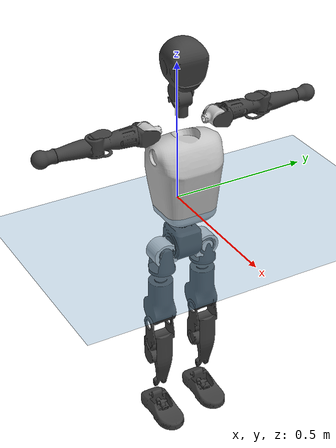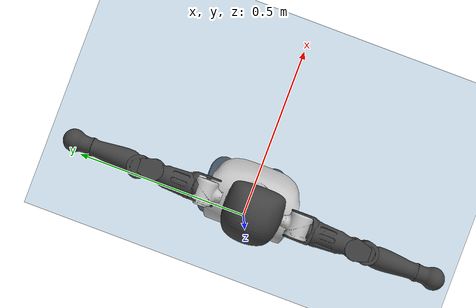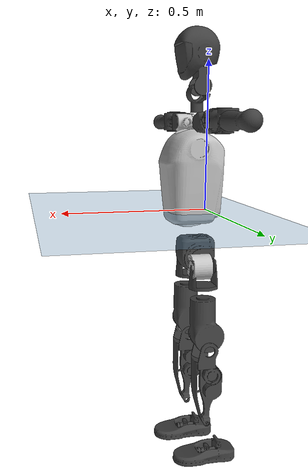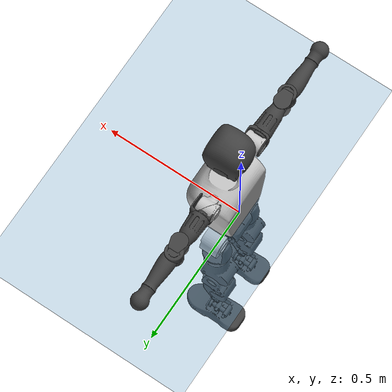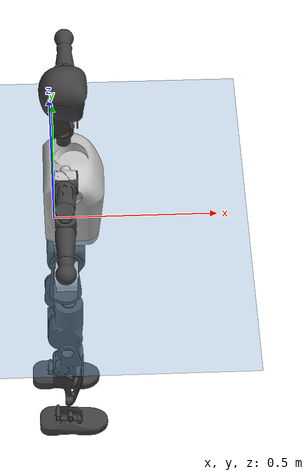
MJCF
<mujoco model="T1">
  <compiler angle="radian" assetdir="assets" balanceinertia="true" inertiafromgeom="false"/>

  <option timestep="0.005" density="1.2" viscosity="2e-05"/>

  <size nkey="1"/>

  <visual>
    <quality shadowsize="8192"/>
    <map shadowclip="0.5"/>
  </visual>

  <default>
    <default class="/">
      <joint armature="0.01" damping="0.01" frictionloss="0.1"/>
      <geom contype="0" conaffinity="0" group="1" solref="-1000 -80"/>
      <site size="0.01 0.005 0.005" group="5"/>
      <general forcelimited="true" biastype="affine" gainprm="25" biasprm="0 -25 -0.6"/>
      <default class="t1">
        <geom rgba="0.25 0.25 0.25 1"/>
        <default class="visual">
          <geom type="mesh" group="2"/>
        </default>
        <default class="collision">
          <geom group="3"/>
        </default>
        <default class="foot">
          <geom size="0.1115 0.05 0.015" type="box" condim="6" group="4" priority="1" solimp="0.015 1 0.015"/>
        </default>
        <default class="reward_collision_sphere">
          <geom group="5" rgba="1 0 0 1"/>
        </default>
      </default>
    </default>
  </default>

  <asset>
    <texture type="skybox" colorspace="auto" name="//unnamed_texture_0" builtin="gradient" rgb1="0.95 0.95 0.95" rgb2="0.95 0.95 0.95" width="100" height="600"/>
    <texture type="2d" colorspace="auto" name="texplane" builtin="checker" rgb1="0.345 0.575 0.748" rgb2="0.345 0.575 0.748" markrgb="1 1 1" width="512" height="512"/>
    <material name="MatPlane" class="/" texture="texplane" texuniform="true" texrepeat="2 2" specular="0.9"/>
    <mesh name="Trunk" class="/" file="Trunk.stl"/>
    <mesh name="H1" class="/" file="H1.stl"/>
    <mesh name="H2" class="/" file="H2.stl"/>
    <mesh name="AL1" class="/" file="AL1.stl"/>
    <mesh name="AL2" class="/" file="AL2.stl"/>
    <mesh name="AL3" class="/" file="AL3.stl"/>
    <mesh name="left_hand_link" class="/" file="left_hand_link.stl"/>
    <mesh name="AR1" class="/" file="AR1.stl"/>
    <mesh name="AR2" class="/" file="AR2.stl"/>
    <mesh name="AR3" class="/" file="AR3.stl"/>
    <mesh name="right_hand_link" class="/" file="right_hand_link.stl"/>
    <mesh name="Waist" class="/" file="Waist.stl"/>
    <mesh name="Hip_Pitch_Left" class="/" file="Hip_Pitch_Left.stl"/>
    <mesh name="Hip_Roll_Left" class="/" file="Hip_Roll_Left.stl"/>
    <mesh name="Hip_Yaw_Left" class="/" file="Hip_Yaw_Left.stl"/>
    <mesh name="Shank_Left" class="/" file="Shank_Left.stl"/>
    <mesh name="Ankle_Cross_Left" class="/" file="Ankle_Cross_Left.stl"/>
    <mesh name="left_foot_link" class="/" file="left_foot_link.stl"/>
    <mesh name="Hip_Pitch_Right" class="/" file="Hip_Pitch_Right.stl"/>
    <mesh name="Hip_Roll_Right" class="/" file="Hip_Roll_Right.stl"/>
    <mesh name="Hip_Yaw_Right" class="/" file="Hip_Yaw_Right.stl"/>
    <mesh name="Shank_Right" class="/" file="Shank_Right.stl"/>
    <mesh name="Ankle_Cross_Right" class="/" file="Ankle_Cross_Right.stl"/>
    <mesh name="right_foot_link" class="/" file="right_foot_link.stl"/>
  </asset>

  <worldbody>
    <geom name="floor" class="/" size="100 100 0.125" type="plane" group="0" material="MatPlane"/>
    <light name="toplight_shadow" class="/" pos="0 0 5" dir="0.0990148 0.0990148 -0.990148" type="directional" ambient="0.04 0.04 0.04" diffuse="0.55 0.55 0.55" specular="0.12 0.12 0.12"/>
    <light name="toplight_fill" class="/" pos="0 0 5" dir="0.0990148 0.0990148 -0.990148" type="directional" castshadow="false" ambient="0.04 0.04 0.04" diffuse="0.3 0.3 0.3" specular="0.08 0.08 0.08"/>
    <body name="trunk" childclass="t1" pos="0.00199084 -0.00176889 -0.00398831" quat="1 0.000129542 0.000143906 0.000261746">
      <inertial pos="0.0340855 0.00360123 0.143231" quat="0.99997 0.000401737 -0.00778562 0.000132005" mass="8.63781" diaginertia="0.00482938 0.0213765 0.264438"/>
      <joint name="//unnamed_joint_0" type="free" armature="0" damping="0" frictionloss="0"/>
      <geom name="//unnamed_geom_1" class="visual" rgba="0.76 0.76 0.76 1" mesh="Trunk"/>
      <geom name="//unnamed_geom_2" class="collision" size="0.0678403 0.0904537 0.135681" pos="0.0338545 0 0.164388" type="box"/>
      <geom name="//unnamed_geom_3" class="reward_collision_sphere" size="0.104022" pos="0.0338545 0 0.13699"/>
      <geom name="//unnamed_geom_4" class="reward_collision_sphere" size="0.0135681" pos="0.0338545 0.0662547 0"/>
      <geom name="//unnamed_geom_5" class="reward_collision_sphere" size="0.0135681" pos="0.0338545 -0.0662547 0"/>
      <geom name="//unnamed_geom_6" class="reward_collision_sphere" size="0.0135681" pos="0.0338545 0.0834029 0.246582"/>
      <geom name="//unnamed_geom_7" class="reward_collision_sphere" size="0.0135681" pos="0.0338545 -0.0834029 0.246582"/>
      <site name="imu" pos="0.0402753 -0.0422653 0.0391403" size="0.00904537"/>
      <camera name="track" pos="0 -1.55893 0" quat="0.707107 0.707107 0 0" mode="trackcom"/>
      <camera name="ego_camera" pos="0.0688375 0 0.575359" quat="-0.5 -0.5 0.5 0.5"/>
      <body name="H1" pos="0.0354345 -0.00187047 0.33275" quat="0.999993 -0.00048285 0.000849136 0.00372647">
        <inertial pos="-0.000695437 0.000428453 0.0783003" quat="0.760541 -0.0151971 -0.0043921 0.649098" mass="0.267415" diaginertia="1.3509e-05 5.90889e-05 0.000662316"/>
        <joint name="AAHead_yaw" pos="0 0 0" axis="0.0134451 0.00518855 0.999896" range="-1.52976 1.53829" armature="0.00500872" damping="0.0321853" frictionloss="0.0952255"/>
        <geom name="//unnamed_geom_8" class="visual" mesh="H1"/>
        <body name="H2" pos="-0.0097802 0.00302208 0.0842806" quat="0.999999 0.000473995 0.00092027 -0.00020986">
          <inertial pos="0.00219153 0.00210107 0.133056" quat="0.987457 0.110026 -0.0803875 -0.0797581" mass="0.466095" diaginertia="0.000119608 0.000543556 0.00808594"/>
          <joint name="Head_pitch" pos="0 0 0" axis="0.00114907 -0.999767 -0.0215682" range="-1.24942 0.411968" armature="0.00897413" damping="0.0131248" frictionloss="0.0819813"/>
          <geom name="//unnamed_geom_9" class="visual" mesh="H2"/>
          <geom name="//unnamed_geom_10" class="collision" size="0.072363" pos="0.00564242 0 0.150689"/>
          <geom name="//unnamed_geom_11" class="reward_collision_sphere" size="0.0814083" pos="0.0112848 0 0.13699"/>
        </body>
      </body>
      <body name="AL1" pos="0.0376179 0.0800442 0.300328" quat="0.999996 -0.000548513 0.00260134 0.00122054">
        <inertial pos="-0.00102774 0.028944 -0.000676592" quat="0.507393 0.498845 -0.497673 0.496012" mass="0.402682" diaginertia="7.50524e-05 0.000375564 0.00142849"/>
        <joint name="Left_Shoulder_Pitch" pos="0 0 0" axis="-0.0014399 0.999872 0.0159634" stiffness="0.00424524" range="-3.32967 1.18345" armature="0.00898609" damping="0.0155295" frictionloss="0.106359"/>
        <geom name="//unnamed_geom_12" class="visual" rgba="0.76 0.76 0.76 1" mesh="AL1"/>
        <body name="AL2" pos="0.00558527 0.0346454 0.000256007" quat="1 9.9725e-06 -2.77925e-05 1.59653e-05">
          <inertial pos="0.00489934 0.0289658 -0.00679639" quat="0.487484 0.516594 -0.480058 0.514815" mass="0.103001" diaginertia="2.16467e-05 0.000102784 0.000785274"/>
          <joint name="Left_Shoulder_Roll" pos="0 0 0" axis="-0.999907 -0.0120158 -0.00640592" range="-1.72918 1.58546" armature="0.0123043" damping="0.0209964" frictionloss="0.0874646"/>
          <geom name="//unnamed_geom_13" class="visual" mesh="AL2"/>
          <body name="AL3" pos="-0.00368822 0.0444668 0.00650822" quat="1 -0.000129338 0.000910184 -0.000230494">
            <inertial pos="-0.00381806 0.066189 5.54179e-05" quat="0.699311 0.714815 0.00171916 -0.000971903" mass="0.7406" diaginertia="0.000779364 0.00352248 0.00333719"/>
            <joint name="Left_Elbow_Pitch" pos="0 0 0" axis="0.0364757 -0.99896 0.0273542" stiffness="0.0440762" range="-2.43199 2.15622" armature="0.0133399" damping="0.0565549" frictionloss="0.110783"/>
            <geom name="//unnamed_geom_14" class="visual" mesh="AL3"/>
            <geom name="//unnamed_geom_15" class="collision" size="0.0271361 0.0678403" pos="0 0.0389733 0" quat="0.707105 0.707108 0 0" type="cylinder"/>
            <geom name="//unnamed_geom_16" class="reward_collision_sphere" size="0.0325633"/>
            <body name="left_hand_link" pos="0.00554886 0.109646 -0.00318466" quat="1 -0.000435624 -0.000386295 -0.000639264">
              <inertial pos="-0.00137836 0.0870778 -0.00179662" quat="0.707443 0.70677 0.000388682 0.00012481" mass="0.245796" diaginertia="0.000421732 0.00211941 0.00107098"/>
              <joint name="Left_Elbow_Yaw" pos="0 0 0" axis="-0.00716793 -0.0177043 0.999818" range="-2.40356 0.0408577" armature="0.00511353" damping="0.0164825" frictionloss="0.103869"/>
              <geom name="//unnamed_geom_17" class="visual" mesh="left_hand_link"/>
              <geom name="//unnamed_geom_18" class="collision" size="0.0271361 0.079147" pos="0 0.101331 0" quat="0.707105 0.707108 0 0" type="cylinder"/>
              <geom name="//unnamed_geom_19" class="reward_collision_sphere" size="0.0452269"/>
              <geom name="//unnamed_geom_20" class="reward_collision_sphere" size="0.0316588" pos="0 0.0857413 0"/>
              <geom name="//unnamed_geom_21" class="reward_collision_sphere" size="0.0316588" pos="0 0.167585 0"/>
            </body>
          </body>
        </body>
      </body>
      <body name="AR1" pos="0.0384678 -0.0853435 0.301144" quat="0.999999 0.000736513 0.000910384 -0.000786636">
        <inertial pos="0.00718043 -0.0359494 -0.00454872" quat="0.518943 0.485353 -0.53031 0.462495" mass="0.389986" diaginertia="8.20922e-05 0.000391242 0.00129852"/>
        <joint name="Right_Shoulder_Pitch" pos="0 0 0" axis="-0.0136215 -0.99988 0.00735527" range="-1.22064 3.30398" armature="0.00989779" damping="0" frictionloss="0.110388"/>
        <geom name="//unnamed_geom_22" class="visual" rgba="0.76 0.76 0.76 1" mesh="AR1"/>
        <body name="AR2" pos="-0.000516327 -0.0362507 0.000560337" quat="1 9.65645e-05 2.9252e-05 -6.44069e-05">
          <inertial pos="0.00235842 -0.0278687 -0.0017363" quat="0.512343 0.487959 -0.513576 0.485429" mass="0.114962" diaginertia="2.34296e-05 9.04283e-05 0.000819293"/>
          <joint name="Right_Shoulder_Roll" pos="0 0 0" axis="-0.99999 -0.00442479 6.40174e-05" range="-1.78604 1.40096" armature="0.0110687" damping="0" frictionloss="0.0977428"/>
          <geom name="//unnamed_geom_23" class="visual" mesh="AR2"/>
          <body name="AR3" pos="-0.00196613 -0.0491325 0.00256755" quat="1 4.10525e-06 1.58836e-05 -2.46517e-06">
            <inertial pos="-0.000146503 -0.0587555 -0.00553138" quat="0.720602 0.693192 -0.00442416 -0.014076" mass="0.76768" diaginertia="0.00072236 0.00392925 0.00281695"/>
            <joint name="Right_Elbow_Pitch" pos="0 0 0" axis="-0.00489906 0.999966 -0.0066515" range="-2.33477 2.36477" armature="0.00851113" damping="0" frictionloss="0.087881"/>
            <geom name="//unnamed_geom_24" class="visual" mesh="AR3"/>
            <geom name="//unnamed_geom_25" class="collision" size="0.0271361 0.0678403" pos="0 -0.0389733 0" quat="0.707105 0.707108 0 0" type="cylinder"/>
            <geom name="//unnamed_geom_26" class="reward_collision_sphere" size="0.0325633"/>
            <body name="right_hand_link" pos="-0.00199773 -0.115928 -0.000555649" quat="1 0.000102628 -0.000745459 4.17465e-05">
              <inertial pos="0.00103612 -0.0871918 0.00644161" quat="0.709504 0.704642 0.00817425 -0.00402157" mass="0.239653" diaginertia="0.000463228 0.00230753 0.00107633"/>
              <joint name="Right_Elbow_Yaw" pos="0 0 0" axis="0.0083937 -0.00528049 0.999951" range="0.0350967 2.46906" armature="0.0103488" damping="0.00716613" frictionloss="0.0721988"/>
              <geom name="//unnamed_geom_27" class="visual" mesh="right_hand_link"/>
              <geom name="//unnamed_geom_28" class="collision" size="0.0271361 0.079147" pos="0 -0.101331 0" quat="0.707105 0.707108 0 0" type="cylinder"/>
              <geom name="//unnamed_geom_29" class="reward_collision_sphere" size="0.0452269"/>
              <geom name="//unnamed_geom_30" class="reward_collision_sphere" size="0.0316588" pos="0 -0.0857413 0"/>
              <geom name="//unnamed_geom_31" class="reward_collision_sphere" size="0.0316588" pos="0 -0.167585 0"/>
            </body>
          </body>
        </body>
      </body>
      <body name="Waist" pos="0.0315954 0.00178312 -0.156622" quat="0.999999 -0.0011104 0.000668907 -4.09999e-05">
        <inertial pos="0.0114163 -0.0047167 0.0105877" quat="0.984633 -0.00637493 -0.174509 -0.00177755" mass="1.91485" diaginertia="0.000342559 0.00152013 0.0223931"/>
        <joint name="Waist" pos="0 0 0" axis="0.0359021 -0.0215241 0.999123" range="-1.57475 1.57951" armature="0.00989173" damping="0" frictionloss="0.0848118"/>
        <geom name="//unnamed_geom_32" class="visual" mesh="Waist"/>
        <body name="Hip_Pitch_Left" pos="0.00751629 0.0792612 -0.00441453" quat="0.999987 0.00366876 0.00119966 -0.00318484">
          <inertial pos="0.00581763 -0.0138517 -0.0271922" quat="0.975974 0.217347 0.0137521 -0.00681171" mass="0.816695" diaginertia="0.000115038 0.000460849 0.0060042"/>
          <joint name="Left_Hip_Pitch" pos="0 0 0" axis="-0.00539985 0.999985 -0.000188034" stiffness="0.00106464" range="-1.81741 1.60469" armature="0.011668" damping="0" frictionloss="0.051625"/>
          <geom name="//unnamed_geom_33" class="visual" rgba="0.76 0.76 0.76 1" mesh="Hip_Pitch_Left"/>
          <body name="Hip_Roll_Left" pos="-0.00946639 0.00401699 -0.0176526" quat="0.999988 0.00323904 0.00365213 -0.000838196">
            <inertial pos="-0.00297357 0.00143312 -0.0658022" quat="0.712384 -0.00215985 -0.000820398 0.701786" mass="0.299313" diaginertia="9.84368e-05 0.000449702 0.00245032"/>
            <joint name="Left_Hip_Roll" pos="0 0 0" axis="-0.999986 0.00348216 -0.00410019" stiffness="0.00198827" range="-1.56234 0.233146" armature="0.00728749" damping="0" frictionloss="0.0881556"/>
            <geom name="//unnamed_geom_34" class="visual" mesh="Hip_Roll_Left"/>
            <geom name="//unnamed_geom_35" class="reward_collision_sphere" size="0.0497495"/>
            <body name="Hip_Yaw_Left" pos="-0.00177181 -0.000305393 -0.114857" quat="1 -0.000208893 -0.000317553 0.000256284">
              <inertial pos="-0.0048114 -0.00977386 -0.129914" quat="0.697213 -0.032758 -0.0314539 0.715425" mass="1.52945" diaginertia="0.001408 0.00696432 0.0122131"/>
              <joint name="Left_Hip_Yaw" pos="0 0 0" axis="-0.00082582 -0.00207564 -0.999998" range="-1.0622 0.965854" armature="0.00895455" damping="0" frictionloss="0.0727843"/>
              <geom name="//unnamed_geom_36" class="visual" mesh="Hip_Yaw_Left"/>
              <geom name="//unnamed_geom_37" class="collision" size="0.0452269 0.072363" type="cylinder"/>
              <body name="Shank_Left" pos="-0.011511 0.00534044 -0.18034" quat="0.999996 0.000399819 0.00206793 0.00187827">
                <inertial pos="-0.00211793 0.00440102 -0.171519" quat="0.995409 0.0282586 -0.020641 0.0890916" mass="1.24503" diaginertia="0.00196471 0.0095 0.00889428"/>
                <joint name="Left_Knee_Pitch" pos="0 0 0" axis="0.000276867 1 -0.00040133" range="-0.0328477 2.46793" armature="0.00654356" damping="0.014131" frictionloss="0.0904497"/>
                <geom name="//unnamed_geom_38" class="visual" mesh="Shank_Left"/>
                <geom name="//unnamed_geom_39" class="collision" size="0.0452269 0.0678403" pos="0 0 -0.164388" type="cylinder"/>
                <geom name="//unnamed_geom_40" class="reward_collision_sphere" size="0.0587949"/>
                <body name="Ankle_Cross_Left" pos="-0.00312011 0.00532029 -0.383883" quat="1 0.00015178 -0.000689346 8.86358e-05">
                  <inertial pos="-0.00346964 0.00272061 -0.0111713" quat="0.428471 0.555613 0.542914 0.461466" mass="0.0566844" diaginertia="1.55925e-06 7.45779e-06 5.55763e-05"/>
                  <joint name="Left_Ankle_Pitch" pos="0 0 0" axis="0.00308162 0.99997 -0.00704197" range="-0.70328 0.185284" armature="0.00746287" damping="0.053573" frictionloss="0.0757806"/>
                  <geom name="//unnamed_geom_41" class="visual" mesh="Ankle_Cross_Left"/>
                  <body name="left_foot_link" pos="0.00261398 0.00256067 -0.00954835" quat="0.999991 -0.00032408 -0.00137225 -0.00394186">
                    <inertial pos="-0.000866669 0.00133109 -0.0102947" quat="0.0211968 0.619097 -0.0168546 0.784848" mass="0.446145" diaginertia="0.000137353 0.000612609 0.00811732"/>
                    <joint name="Left_Ankle_Roll" pos="0 0 0" axis="-0.999479 -0.0322357 0.00182389" range="-0.416838 0.266394" armature="0.00886592" damping="0.00589843" frictionloss="0.0443838"/>
                    <geom name="//unnamed_geom_42" class="visual" mesh="left_foot_link"/>
                    <geom name="left_foot" class="foot" size="0.103634 0.0594743 0.00840742" pos="0.00564242 0 -0.0205485"/>
                    <geom name="//unnamed_geom_44" class="reward_collision_sphere" size="0.0470359" pos="0.00564242 0 -0.0205485"/>
                    <geom name="//unnamed_geom_45" class="reward_collision_sphere" size="0.0271361" pos="0.053603 -0.0179277 -0.0205485"/>
                    <geom name="//unnamed_geom_46" class="reward_collision_sphere" size="0.0271361" pos="-0.0394969 -0.0179277 -0.0205485"/>
                    <site name="left_foot" class="foot" pos="0.00564242 0 -0.0205485" size="0.00904537"/>
                  </body>
                </body>
              </body>
            </body>
          </body>
        </body>
        <body name="Hip_Pitch_Right" pos="0.00144165 -0.0827156 0.000170773" quat="1 -0.000356693 -0.000171912 -0.00077943">
          <inertial pos="0.00145355 0.00624007 -0.0227284" quat="0.96648 -0.255591 -0.0158493 -0.0184084" mass="0.853762" diaginertia="0.000115657 0.000455615 0.00675963"/>
          <joint name="Right_Hip_Pitch" pos="0 0 0" axis="-0.00110567 -0.999995 -0.0029959" stiffness="0.00633809" range="-1.53555 1.85327" armature="0.00825704" damping="0.0082565" frictionloss="0.0949865"/>
          <geom name="//unnamed_geom_47" class="visual" rgba="0.76 0.76 0.76 1" mesh="Hip_Pitch_Right"/>
          <body name="Hip_Roll_Right" pos="-0.00405121 0.00210379 -0.0196927" quat="1 0.000120805 0.0003526 -0.00027679">
            <inertial pos="0.00109451 -0.00386022 -0.0740353" quat="0.694981 -0.0111525 0.0115002 0.718849" mass="0.307542" diaginertia="0.00010307 0.000451884 0.00271774"/>
            <joint name="Right_Hip_Roll" pos="0 0 0" axis="-0.999992 0.00366905 -0.00148604" stiffness="0.0522023" range="-0.230649 1.55926" armature="0.0104946" damping="0.00574314" frictionloss="0.0938239"/>
            <geom name="//unnamed_geom_48" class="visual" mesh="Hip_Roll_Right"/>
            <geom name="//unnamed_geom_49" class="reward_collision_sphere" size="0.0497495"/>
            <body name="Hip_Yaw_Right" pos="0.00655669 -0.00951408 -0.112397" quat="1 0.00010275 -9.91743e-05 6.97721e-06">
              <inertial pos="0.0012166 0.000921116 -0.113344" quat="0.720586 -0.0285202 -0.00624196 0.692751" mass="1.50276" diaginertia="0.00153015 0.00757296 0.0130016"/>
              <joint name="Right_Hip_Yaw" pos="0 0 0" axis="0.00842591 -0.00224128 -0.999962" stiffness="0.000715137" range="-1.13806 1.06055" armature="0.0100114" damping="0.00392438" frictionloss="0.0932512"/>
              <geom name="//unnamed_geom_50" class="visual" mesh="Hip_Yaw_Right"/>
              <geom name="//unnamed_geom_51" class="collision" size="0.0452269 0.072363" type="cylinder"/>
              <body name="Shank_Right" pos="-0.00794837 -0.0051912 -0.188162" quat="0.999999 -0.000262711 4.41241e-05 -0.00102361">
                <inertial pos="-0.0134112 0.00170802 -0.166539" quat="0.999444 -0.0254037 -0.00950458 -0.0193895" mass="1.50308" diaginertia="0.0021682 0.0099229 0.0102602"/>
                <joint name="Right_Knee_Pitch" pos="0 0 0" axis="-0.0221953 -0.999625 -0.0160477" range="-2.37196 0.0136581" armature="0.00761245" damping="0.0224276" frictionloss="0.066064"/>
                <geom name="//unnamed_geom_52" class="visual" mesh="Shank_Right"/>
                <geom name="//unnamed_geom_53" class="collision" size="0.0452269 0.0678403" pos="0 0 -0.164388" type="cylinder"/>
                <geom name="//unnamed_geom_54" class="reward_collision_sphere" size="0.0587949"/>
                <body name="Ankle_Cross_Right" pos="0.00227612 0.00859645 -0.382472" quat="0.999992 -0.0024905 0.00286973 0.00123963">
                  <inertial pos="-0.00330383 0.00102819 -0.0126287" quat="0.437773 0.548205 0.556447 0.445189" mass="0.0543979" diaginertia="1.77895e-06 7.24398e-06 5.4231e-05"/>
                  <joint name="Right_Ankle_Pitch" pos="0 0 0" axis="0.00298433 -0.99999 -0.00323639" range="-0.309844 0.695548" armature="0.00815744" damping="0" frictionloss="0.0927026"/>
                  <geom name="//unnamed_geom_55" class="visual" mesh="Ankle_Cross_Right"/>
                  <body name="right_foot_link" pos="0.00104613 -0.000848473 -0.012731" quat="0.999996 -0.00151277 -0.00234415 -2.47412e-05">
                    <inertial pos="0.00528449 -0.00094927 -0.0119647" quat="0.000121383 0.62061 -0.000339445 0.784119" mass="0.505059" diaginertia="0.000169169 0.000717841 0.0105697"/>
                    <joint name="Right_Ankle_Roll" pos="0 0 0" axis="-0.9999 -0.0116579 -0.00794878" range="-0.5001 0.482686" armature="0.00898623" damping="0.0154913" frictionloss="0.0941417"/>
                    <geom name="//unnamed_geom_56" class="visual" mesh="right_foot_link"/>
                    <geom name="right_foot" class="foot" size="0.0938268 0.0559119 0.0124168" pos="0.00564242 0 -0.0205485"/>
                    <geom name="//unnamed_geom_58" class="reward_collision_sphere" size="0.0361815"/>
                    <geom name="//unnamed_geom_59" class="reward_collision_sphere" size="0.0271361" pos="0.00564242 0 -0.0205485"/>
                    <geom name="//unnamed_geom_60" class="reward_collision_sphere" size="0.0271361" pos="0.053603 0.0179277 -0.0205485"/>
                    <geom name="//unnamed_geom_61" class="reward_collision_sphere" size="0.0271361" pos="-0.0394969 0.0179277 -0.0205485"/>
                    <site name="right_foot" class="foot" pos="0.00564242 0 -0.0205485" size="0.00904537"/>
                  </body>
                </body>
              </body>
            </body>
          </body>
        </body>
      </body>
    </body>
  </worldbody>

  <contact>
    <pair class="/" geom1="floor" geom2="left_foot" name="//unnamed_contact_0"/>
    <pair class="/" geom1="floor" geom2="right_foot" name="//unnamed_contact_1"/>
  </contact>

  <actuator>
    <general name="AAHead_yaw" class="/" joint="AAHead_yaw" forcerange="-6.36248 6.36248" gainprm="27.2327" biasprm="0 -27.2327 -0.593193"/>
    <general name="Head_pitch" class="/" joint="Head_pitch" forcerange="-6.50259 6.50259" gainprm="27.2327" biasprm="0 -27.2327 -0.593193"/>
    <general name="Left_Shoulder_Pitch" class="/" joint="Left_Shoulder_Pitch" forcerange="-17.3012 17.3012" gainprm="27.2327" biasprm="0 -27.2327 -0.593193"/>
    <general name="Left_Shoulder_Roll" class="/" joint="Left_Shoulder_Roll" forcerange="-17.8876 17.8876" gainprm="27.2327" biasprm="0 -27.2327 -0.593193"/>
    <general name="Left_Elbow_Pitch" class="/" joint="Left_Elbow_Pitch" forcerange="-21.5517 21.5517" gainprm="27.2327" biasprm="0 -27.2327 -0.593193"/>
    <general name="Left_Elbow_Yaw" class="/" joint="Left_Elbow_Yaw" forcerange="-12.0381 12.0381" gainprm="27.2327" biasprm="0 -27.2327 -0.593193"/>
    <general name="Right_Shoulder_Pitch" class="/" joint="Right_Shoulder_Pitch" forcerange="-11.7306 11.7306" gainprm="27.2327" biasprm="0 -27.2327 -0.593193"/>
    <general name="Right_Shoulder_Roll" class="/" joint="Right_Shoulder_Roll" forcerange="-16.9458 16.9458" gainprm="27.2327" biasprm="0 -27.2327 -0.593193"/>
    <general name="Right_Elbow_Pitch" class="/" joint="Right_Elbow_Pitch" forcerange="-16.3842 16.3842" gainprm="27.2327" biasprm="0 -27.2327 -0.593193"/>
    <general name="Right_Elbow_Yaw" class="/" joint="Right_Elbow_Yaw" forcerange="-16.5815 16.5815" gainprm="27.2327" biasprm="0 -27.2327 -0.593193"/>
    <general name="Waist" class="/" joint="Waist" forcerange="-25.5794 25.5794" gainprm="27.2327" biasprm="0 -27.2327 -0.593193"/>
    <general name="Left_Hip_Pitch" class="/" joint="Left_Hip_Pitch" forcerange="-42.3961 42.3961" gainprm="27.2327" biasprm="0 -27.2327 -0.593193"/>
    <general name="Left_Hip_Roll" class="/" joint="Left_Hip_Roll" forcerange="-19.4867 19.4867" gainprm="27.2327" biasprm="0 -27.2327 -0.593193"/>
    <general name="Left_Hip_Yaw" class="/" joint="Left_Hip_Yaw" forcerange="-36.0353 36.0353" gainprm="27.2327" biasprm="0 -27.2327 -0.593193"/>
    <general name="Left_Knee_Pitch" class="/" joint="Left_Knee_Pitch" forcerange="-71.7759 71.7759" gainprm="27.2327" biasprm="0 -27.2327 -0.593193"/>
    <general name="Left_Ankle_Pitch" class="/" joint="Left_Ankle_Pitch" forcerange="-18.8757 18.8757" gainprm="27.2327" biasprm="0 -27.2327 -0.593193"/>
    <general name="Left_Ankle_Roll" class="/" joint="Left_Ankle_Roll" forcerange="-13.3677 13.3677" gainprm="27.2327" biasprm="0 -27.2327 -0.593193"/>
    <general name="Right_Hip_Pitch" class="/" joint="Right_Hip_Pitch" forcerange="-40.6509 40.6509" gainprm="27.2327" biasprm="0 -27.2327 -0.593193"/>
    <general name="Right_Hip_Roll" class="/" joint="Right_Hip_Roll" forcerange="-26.1563 26.1563" gainprm="27.2327" biasprm="0 -27.2327 -0.593193"/>
    <general name="Right_Hip_Yaw" class="/" joint="Right_Hip_Yaw" forcerange="-24.7331 24.7331" gainprm="27.2327" biasprm="0 -27.2327 -0.593193"/>
    <general name="Right_Knee_Pitch" class="/" joint="Right_Knee_Pitch" forcerange="-55.1134 55.1134" gainprm="27.2327" biasprm="0 -27.2327 -0.593193"/>
    <general name="Right_Ankle_Pitch" class="/" joint="Right_Ankle_Pitch" forcerange="-22.5077 22.5077" gainprm="27.2327" biasprm="0 -27.2327 -0.593193"/>
    <general name="Right_Ankle_Roll" class="/" joint="Right_Ankle_Roll" forcerange="-13.4455 13.4455" gainprm="27.2327" biasprm="0 -27.2327 -0.593193"/>
  </actuator>

  <sensor>
    <gyro site="imu" name="imu_angular_velocity"/>
    <velocimeter site="imu" name="imu_linear_velocity"/>
    <framelinvel objtype="site" objname="left_foot" name="left_foot_global_linear_velocity"/>
    <framelinvel objtype="site" objname="right_foot" name="right_foot_global_linear_velocity"/>
  </sensor>

  <keyframe>
    <key name="home" qpos="0 0 0.6385 1 0 0 0 0 0 0 1.4 0 -0.4 0 -1.4 0 0.4 0 -0.4 0 0 0.8 -0.4 0 0.4 0 0 -0.8 0.4 0"/>
  </keyframe>
</mujoco>
